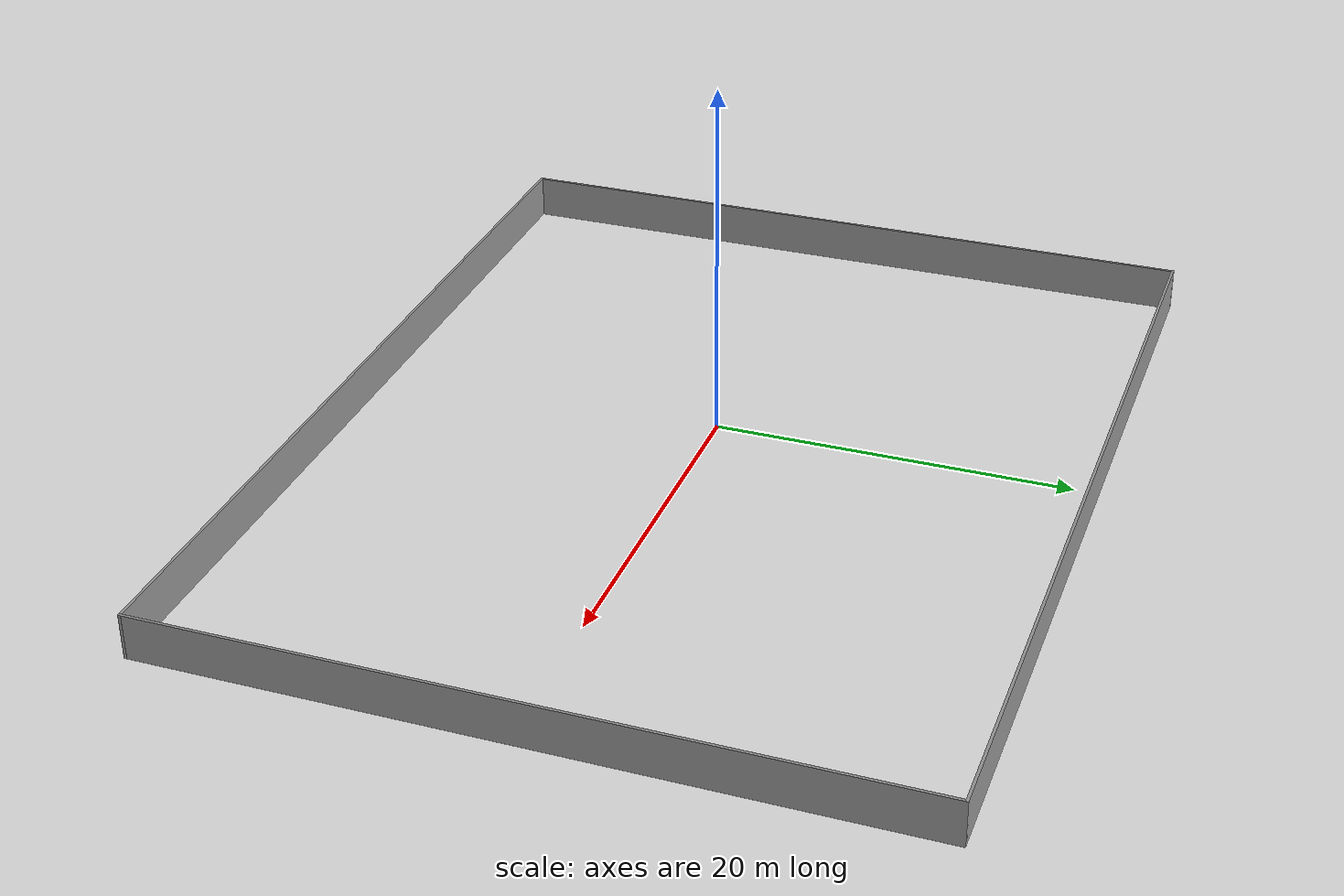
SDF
<?xml version='1.0'?>
<sdf version='1.7'>
  <model name='arena_2'>
    <pose>3.64841 0.837841 0 0 -0 0</pose>
    <link name='Wall_19'>
      <collision name='Wall_19_Collision'>
        <geometry>
          <box>
            <size>51.75 0.15 2.5</size>
          </box>
        </geometry>
        <pose>0 0 1.25 0 -0 0</pose>
      </collision>
      <visual name='Wall_19_Visual'>
        <pose>0 0 1.25 0 -0 0</pose>
        <geometry>
          <box>
            <size>51.75 0.15 2.5</size>
          </box>
        </geometry>
        <material>
          <script>
            <uri>file://media/materials/scripts/gazebo.material</uri>
            <name>Gazebo/Grey</name>
          </script>
          <ambient>1 1 1 1</ambient>
        </material>
        <meta>
          <layer>0</layer>
        </meta>
      </visual>
      <pose>0.000229 20.425 0 0 -0 0</pose>
    </link>
    <link name='Wall_20'>
      <collision name='Wall_20_Collision'>
        <geometry>
          <box>
            <size>41 0.15 2.5</size>
          </box>
        </geometry>
        <pose>0 0 1.25 0 -0 0</pose>
      </collision>
      <visual name='Wall_20_Visual'>
        <pose>0 0 1.25 0 -0 0</pose>
        <geometry>
          <box>
            <size>41 0.15 2.5</size>
          </box>
        </geometry>
        <material>
          <script>
            <uri>file://media/materials/scripts/gazebo.material</uri>
            <name>Gazebo/Grey</name>
          </script>
          <ambient>1 1 1 1</ambient>
        </material>
        <meta>
          <layer>0</layer>
        </meta>
      </visual>
      <pose>25.8002 0 0 0 -0 -1.5708</pose>
    </link>
    <link name='Wall_21'>
      <collision name='Wall_21_Collision'>
        <geometry>
          <box>
            <size>51.5 0.15 2.5</size>
          </box>
        </geometry>
        <pose>0 0 1.25 0 -0 0</pose>
      </collision>
      <visual name='Wall_21_Visual'>
        <pose>0 0 1.25 0 -0 0</pose>
        <geometry>
          <box>
            <size>51.5 0.15 2.5</size>
          </box>
        </geometry>
        <material>
          <script>
            <uri>file://media/materials/scripts/gazebo.material</uri>
            <name>Gazebo/Grey</name>
          </script>
          <ambient>1 1 1 1</ambient>
        </material>
        <meta>
          <layer>0</layer>
        </meta>
      </visual>
      <pose>0.125229 -20.425 0 0 -0 3.14159</pose>
    </link>
    <link name='Wall_22'>
      <collision name='Wall_22_Collision'>
        <geometry>
          <box>
            <size>41.0008 0.15 2.5</size>
          </box>
        </geometry>
        <pose>0 0 1.25 0 -0 0</pose>
      </collision>
      <visual name='Wall_22_Visual'>
        <pose>0 0 1.25 0 -0 0</pose>
        <geometry>
          <box>
            <size>41.0008 0.15 2.5</size>
          </box>
        </geometry>
        <material>
          <script>
            <uri>file://media/materials/scripts/gazebo.material</uri>
            <name>Gazebo/Grey</name>
          </script>
          <ambient>1 1 1 1</ambient>
        </material>
        <meta>
          <layer>0</layer>
        </meta>
      </visual>
      <pose>-25.6748 0 0 0 -0 1.57692</pose>
    </link>
    <static>1</static>
  </model>
</sdf>
